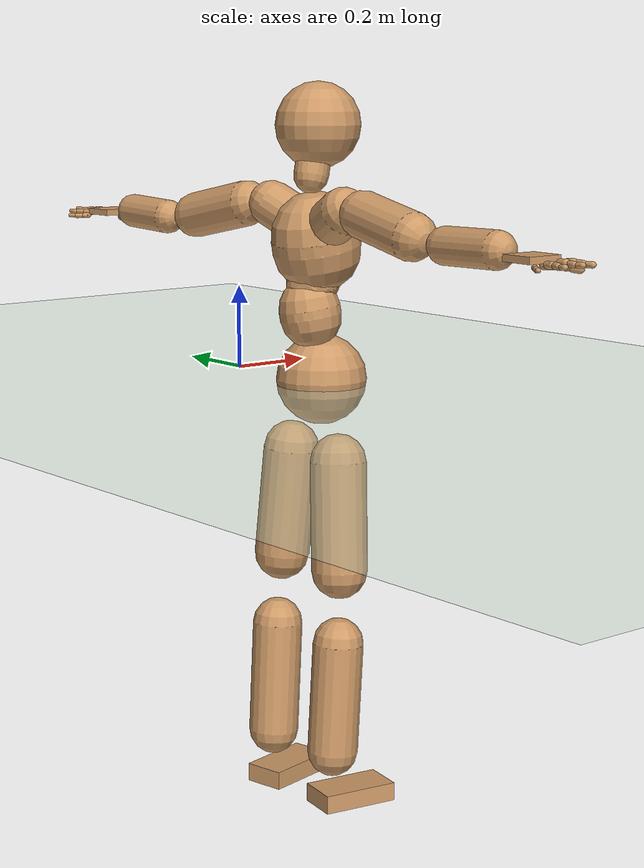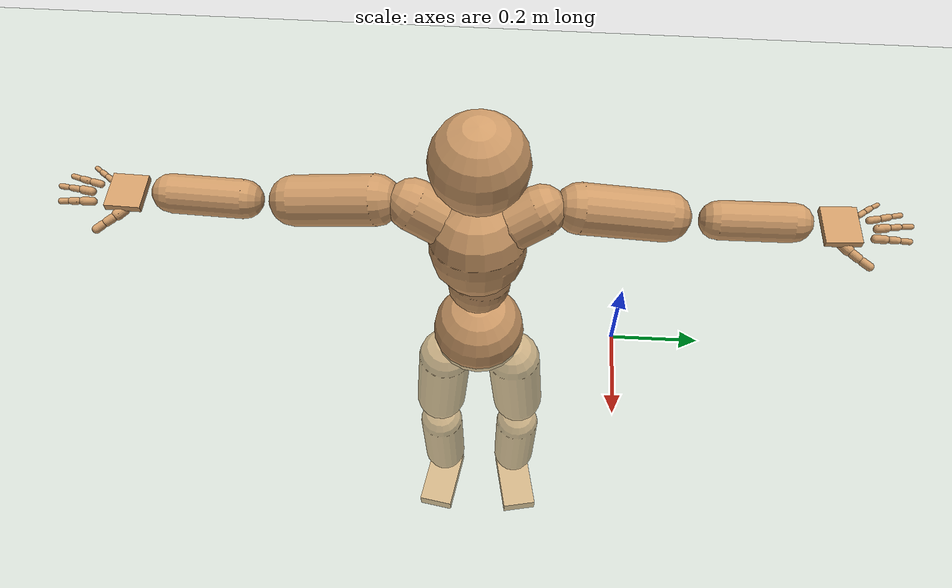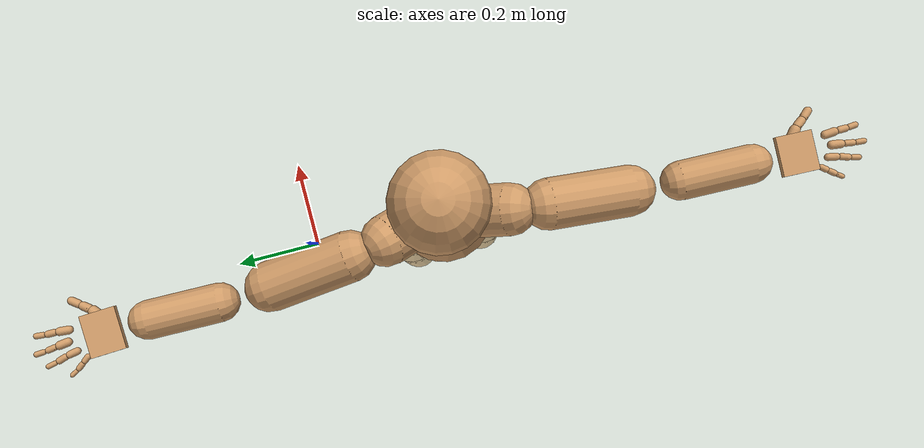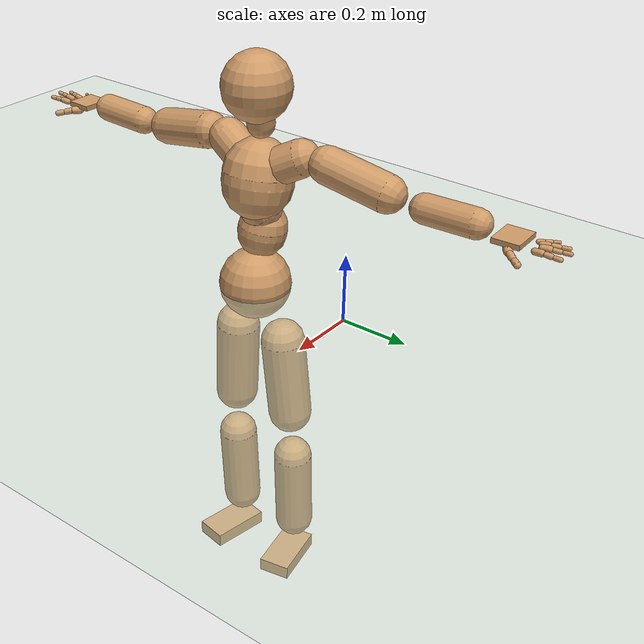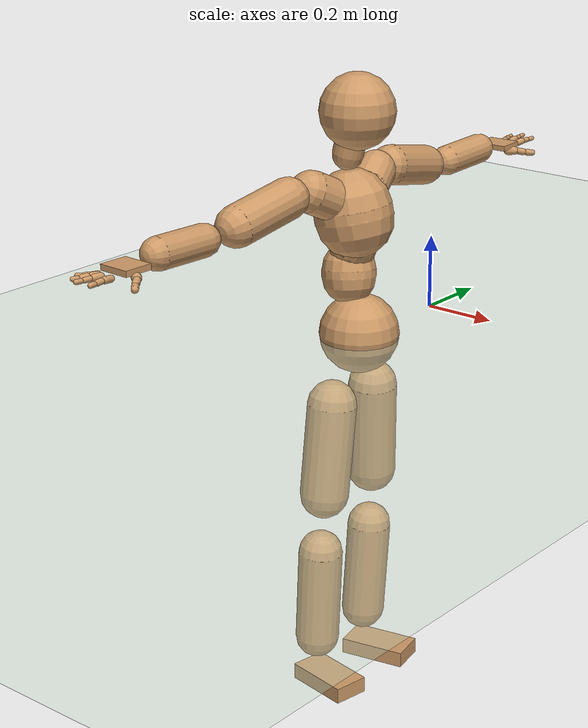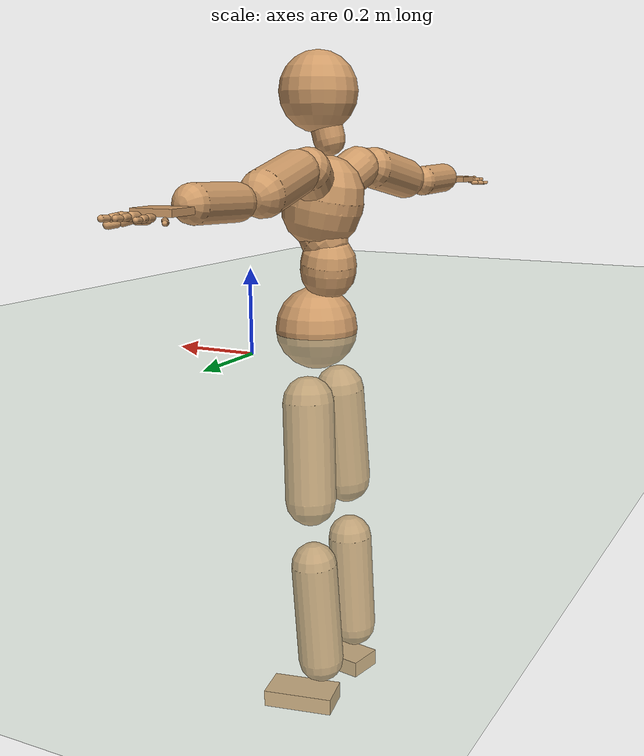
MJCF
<mujoco model="humanoid">
  <compiler coordinate="local" angle="radian"/>
  <default>
    <joint damping="0.0" armature="0.01" stiffness="0.0" limited="true"/>
    <geom conaffinity="1" condim="3" contype="7" margin="0.001" rgba="0.8 0.6 .4 1"/>
  </default>
  <asset>
    <texture type="skybox" builtin="gradient" rgb1=".4 .5 .6" rgb2="0 0 0" width="100" height="100"/>
    <texture builtin="flat" height="1278" mark="cross" markrgb="1 1 1" name="texgeom" random="0.01" rgb1="0.8 0.6 0.4" rgb2="0.8 0.6 0.4" type="cube" width="127"/>
    <texture builtin="checker" height="100" name="texplane" rgb1="0 0 0" rgb2="0.8 0.8 0.8" type="2d" width="100"/>
    <material name="MatPlane" reflectance="0.5" shininess="1" specular="1" texrepeat="60 60" texture="texplane"/>
    <material name="geom" texture="texgeom" texuniform="true"/>
  </asset>
  <worldbody>
    <light cutoff="100" diffuse="1 1 1" dir="-0 0 -1.3" directional="true" exponent="1" pos="0 0 1.3" specular=".1 .1 .1"/>
    <geom conaffinity="1" condim="3" name="floor" pos="0 0 0" rgba="0.8 0.9 0.8 1" size="100 100 .2" type="plane" material="MatPlane"/>
    <body name="Pelvis" pos="0.0008 -0.3163 0.0108">
      <freejoint name="Pelvis"/>
      <geom type="sphere" contype="1" conaffinity="1" density="500" size="0.1065" pos="0.0000 0.0000 0.0000" name="Pelvis"/>
      <body name="L_Hip" pos="-0.0162 0.081 -0.0903">
        <joint name="L_Hip_x" type="hinge" pos="0 0 0" axis="1 0 0" stiffness="800" damping="80" armature="0.02" range="-180.0000 180.0000"/>
        <joint name="L_Hip_y" type="hinge" pos="0 0 0" axis="0 1 0" stiffness="800" damping="80" armature="0.02" range="-180.0000 180.0000"/>
        <joint name="L_Hip_z" type="hinge" pos="0 0 0" axis="0 0 1" stiffness="800" damping="80" armature="0.02" range="-180.0000 180.0000"/>
        <geom type="capsule" contype="1" conaffinity="1" density="500" fromto="-0.0049 0.0058 -0.0862 -0.0197 0.0232 -0.3446" size="0.066" name="L_Hip"/>
        <body name="L_Knee" pos="-0.0247 0.029 -0.4308">
          <joint name="L_Knee_x" type="hinge" pos="0 0 0" axis="1 0 0" stiffness="800" damping="80" armature="0.02" range="-180.0000 180.0000"/>
          <joint name="L_Knee_y" type="hinge" pos="0 0 0" axis="0 1 0" stiffness="800" damping="80" armature="0.02" range="-180.0000 180.0000"/>
          <joint name="L_Knee_z" type="hinge" pos="0 0 0" axis="0 0 1" stiffness="800" damping="80" armature="0.02" range="-180.0000 180.0000"/>
          <geom type="capsule" contype="1" conaffinity="1" density="500" fromto="-0.0055 -0.0015 -0.0899 -0.0219 -0.0059 -0.3596" size="0.0598" name="L_Knee"/>
          <body name="L_Ankle" pos="-0.0274 -0.0074 -0.4495">
            <joint name="L_Ankle_x" type="hinge" pos="0 0 0" axis="1 0 0" stiffness="800" damping="80" armature="0.02" range="-180.0000 180.0000"/>
            <joint name="L_Ankle_y" type="hinge" pos="0 0 0" axis="0 1 0" stiffness="800" damping="80" armature="0.02" range="-180.0000 180.0000"/>
            <joint name="L_Ankle_z" type="hinge" pos="0 0 0" axis="0 0 1" stiffness="800" damping="80" armature="0.02" range="-180.0000 180.0000"/>
            <geom type="box" contype="1" conaffinity="1" density="500" pos="0.0580 0.0117 -0.0246" size="0.0923 0.0491 0.0218" quat="0.9950 0.0000 0.0000 0.0997" name="L_Ankle"/>
            <body name="L_Toe" pos="0.116 0.0235 -0.0492">
              <joint name="L_Toe_x" type="hinge" pos="0 0 0" axis="1 0 0" stiffness="500" damping="50" armature="0.02" range="-180.0000 180.0000"/>
              <joint name="L_Toe_y" type="hinge" pos="0 0 0" axis="0 1 0" stiffness="500" damping="50" armature="0.02" range="-180.0000 180.0000"/>
              <joint name="L_Toe_z" type="hinge" pos="0 0 0" axis="0 0 1" stiffness="500" damping="50" armature="0.02" range="-180.0000 180.0000"/>
              <geom type="box" contype="1" conaffinity="1" density="500" pos="0.0000 0.0000 0.0236" size="0.001 0.0024 0.001" quat="0.9944 0.0000 0.0000 0.1061" name="L_Toe"/>
            </body>
          </body>
        </body>
      </body>
      <body name="R_Hip" pos="-0.0175 -0.0807 -0.0966">
        <joint name="R_Hip_x" type="hinge" pos="0 0 0" axis="1 0 0" stiffness="800" damping="80" armature="0.02" range="-180.0000 180.0000"/>
        <joint name="R_Hip_y" type="hinge" pos="0 0 0" axis="0 1 0" stiffness="800" damping="80" armature="0.02" range="-180.0000 180.0000"/>
        <joint name="R_Hip_z" type="hinge" pos="0 0 0" axis="0 0 1" stiffness="800" damping="80" armature="0.02" range="-180.0000 180.0000"/>
        <geom type="capsule" contype="1" conaffinity="1" density="500" fromto="-0.0036 -0.0066 -0.0854 -0.0143 -0.0265 -0.3416" size="0.0659" name="R_Hip"/>
        <body name="R_Knee" pos="-0.0179 -0.0331 -0.427">
          <joint name="R_Knee_x" type="hinge" pos="0 0 0" axis="1 0 0" stiffness="800" damping="80" armature="0.02" range="-180.0000 180.0000"/>
          <joint name="R_Knee_y" type="hinge" pos="0 0 0" axis="0 1 0" stiffness="800" damping="80" armature="0.02" range="-180.0000 180.0000"/>
          <joint name="R_Knee_z" type="hinge" pos="0 0 0" axis="0 0 1" stiffness="800" damping="80" armature="0.02" range="-180.0000 180.0000"/>
          <geom type="capsule" contype="1" conaffinity="1" density="500" fromto="-0.0048 0.0005 -0.0881 -0.0192 0.0019 -0.3523" size="0.0598" name="R_Knee"/>
          <body name="R_Ankle" pos="-0.024 0.0024 -0.4404">
            <joint name="R_Ankle_x" type="hinge" pos="0 0 0" axis="1 0 0" stiffness="800" damping="80" armature="0.02" range="-180.0000 180.0000"/>
            <joint name="R_Ankle_y" type="hinge" pos="0 0 0" axis="0 1 0" stiffness="800" damping="80" armature="0.02" range="-180.0000 180.0000"/>
            <joint name="R_Ankle_z" type="hinge" pos="0 0 0" axis="0 0 1" stiffness="800" damping="80" armature="0.02" range="-180.0000 180.0000"/>
            <geom type="box" contype="1" conaffinity="1" density="500" pos="0.0549 -0.0094 -0.0262" size="0.0923 0.0491 0.0219" quat="0.9964 0.0000 0.0000 -0.0850" name="R_Ankle"/>
            <body name="R_Toe" pos="0.1097 -0.0189 -0.0525">
              <joint name="R_Toe_x" type="hinge" pos="0 0 0" axis="1 0 0" stiffness="500" damping="50" armature="0.02" range="-180.0000 180.0000"/>
              <joint name="R_Toe_y" type="hinge" pos="0 0 0" axis="0 1 0" stiffness="500" damping="50" armature="0.02" range="-180.0000 180.0000"/>
              <joint name="R_Toe_z" type="hinge" pos="0 0 0" axis="0 0 1" stiffness="500" damping="50" armature="0.02" range="-180.0000 180.0000"/>
              <geom type="box" contype="1" conaffinity="1" density="500" pos="0.0000 0.0000 0.0252" size="0.001 0.0024 0.001" quat="0.9972 0.0000 0.0000 -0.0748" name="R_Toe"/>
            </body>
          </body>
        </body>
      </body>
      <body name="Torso" pos="-0.0286 -0.0062 0.1068">
        <joint name="Torso_x" type="hinge" pos="0 0 0" axis="1 0 0" stiffness="1000" damping="100" armature="0.02" range="-180.0000 180.0000"/>
        <joint name="Torso_y" type="hinge" pos="0 0 0" axis="0 1 0" stiffness="1000" damping="100" armature="0.02" range="-180.0000 180.0000"/>
        <joint name="Torso_z" type="hinge" pos="0 0 0" axis="0 0 1" stiffness="1000" damping="100" armature="0.02" range="-180.0000 180.0000"/>
        <geom type="capsule" contype="1" conaffinity="1" density="500" fromto="-0.0073 0.0072 0.0618 -0.0048 0.0048 0.0412" size="0.0718" name="Torso"/>
        <body name="Spine" pos="-0.0121 0.012 0.1029">
          <joint name="Spine_x" type="hinge" pos="0 0 0" axis="1 0 0" stiffness="1000" damping="100" armature="0.02" range="-180.0000 180.0000"/>
          <joint name="Spine_y" type="hinge" pos="0 0 0" axis="0 1 0" stiffness="1000" damping="100" armature="0.02" range="-180.0000 180.0000"/>
          <joint name="Spine_z" type="hinge" pos="0 0 0" axis="0 0 1" stiffness="1000" damping="100" armature="0.02" range="-180.0000 180.0000"/>
          <geom type="capsule" contype="1" conaffinity="1" density="500" fromto="0.0216 -0.0040 0.0253 0.0144 -0.0027 0.0169" size="0.0608" name="Spine"/>
          <body name="Chest" pos="0.036 -0.0067 0.0421">
            <joint name="Chest_x" type="hinge" pos="0 0 0" axis="1 0 0" stiffness="1000" damping="100" armature="0.02" range="-180.0000 180.0000"/>
            <joint name="Chest_y" type="hinge" pos="0 0 0" axis="0 1 0" stiffness="1000" damping="100" armature="0.02" range="-180.0000 180.0000"/>
            <joint name="Chest_z" type="hinge" pos="0 0 0" axis="0 0 1" stiffness="1000" damping="100" armature="0.02" range="-180.0000 180.0000"/>
            <geom type="capsule" contype="1" conaffinity="1" density="500" fromto="-0.0169 -0.0017 0.0834 -0.0112 -0.0011 0.0556" size="0.1037" name="Chest"/>
            <body name="Neck" pos="-0.038 -0.0059 0.1935">
              <joint name="Neck_x" type="hinge" pos="0 0 0" axis="1 0 0" stiffness="500" damping="50" armature="0.02" range="-180.0000 180.0000"/>
              <joint name="Neck_y" type="hinge" pos="0 0 0" axis="0 1 0" stiffness="500" damping="50" armature="0.02" range="-180.0000 180.0000"/>
              <joint name="Neck_z" type="hinge" pos="0 0 0" axis="0 0 1" stiffness="500" damping="50" armature="0.02" range="-180.0000 180.0000"/>
              <geom type="capsule" contype="1" conaffinity="1" density="500" fromto="0.0064 0.0018 0.0284 0.0257 0.0070 0.1136" size="0.0404" name="Neck"/>
              <body name="Head" pos="0.0321 0.0088 0.1421">
                <joint name="Head_x" type="hinge" pos="0 0 0" axis="1 0 0" stiffness="500" damping="50" armature="0.02" range="-180.0000 180.0000"/>
                <joint name="Head_y" type="hinge" pos="0 0 0" axis="0 1 0" stiffness="500" damping="50" armature="0.02" range="-180.0000 180.0000"/>
                <joint name="Head_z" type="hinge" pos="0 0 0" axis="0 0 1" stiffness="500" damping="50" armature="0.02" range="-180.0000 180.0000"/>
                <geom type="sphere" contype="1" conaffinity="1" density="500" size="0.0989" pos="0.0000 0.0000 0.0000" name="Head"/>
              </body>
            </body>
            <body name="L_Thorax" pos="-0.0192 0.0533 0.1137">
              <joint name="L_Thorax_x" type="hinge" pos="0 0 0" axis="1 0 0" stiffness="500" damping="50" armature="0.02" range="-180.0000 180.0000"/>
              <joint name="L_Thorax_y" type="hinge" pos="0 0 0" axis="0 1 0" stiffness="500" damping="50" armature="0.02" range="-180.0000 180.0000"/>
              <joint name="L_Thorax_z" type="hinge" pos="0 0 0" axis="0 0 1" stiffness="500" damping="50" armature="0.02" range="-180.0000 180.0000"/>
              <geom type="capsule" contype="1" conaffinity="1" density="500" fromto="-0.0060 0.0182 0.0096 -0.0241 0.0729 0.0383" size="0.0542" name="L_Thorax"/>
              <body name="L_Shoulder" pos="-0.0301 0.0911 0.0479">
                <joint name="L_Shoulder_x" type="hinge" pos="0 0 0" axis="1 0 0" stiffness="500" damping="50" armature="0.02" range="-180.0000 180.0000"/>
                <joint name="L_Shoulder_y" type="hinge" pos="0 0 0" axis="0 1 0" stiffness="500" damping="50" armature="0.02" range="-180.0000 180.0000"/>
                <joint name="L_Shoulder_z" type="hinge" pos="0 0 0" axis="0 0 1" stiffness="500" damping="50" armature="0.02" range="-180.0000 180.0000"/>
                <geom type="capsule" contype="1" conaffinity="1" density="500" fromto="-0.0063 0.0604 -0.0128 -0.0251 0.2415 -0.0510" size="0.0538" name="L_Shoulder"/>
                <body name="L_Elbow" pos="-0.0313 0.3019 -0.0638">
                  <joint name="L_Elbow_x" type="hinge" pos="0 0 0" axis="1 0 0" stiffness="500" damping="50" armature="0.02" range="-720.0000 720.0000"/>
                  <joint name="L_Elbow_y" type="hinge" pos="0 0 0" axis="0 1 0" stiffness="500" damping="50" armature="0.02" range="-720.0000 720.0000"/>
                  <joint name="L_Elbow_z" type="hinge" pos="0 0 0" axis="0 0 1" stiffness="500" damping="50" armature="0.02" range="-720.0000 720.0000"/>
                  <geom type="capsule" contype="1" conaffinity="1" density="500" fromto="0.0007 0.0512 0.0018 0.0027 0.2050 0.0072" size="0.0414" name="L_Elbow"/>
                  <body name="L_Wrist" pos="0.0034 0.2562 0.009">
                    <joint name="L_Wrist_x" type="hinge" pos="0 0 0" axis="1 0 0" stiffness="300" damping="30" armature="0.02" range="-180.0000 180.0000"/>
                    <joint name="L_Wrist_y" type="hinge" pos="0 0 0" axis="0 1 0" stiffness="300" damping="30" armature="0.02" range="-180.0000 180.0000"/>
                    <joint name="L_Wrist_z" type="hinge" pos="0 0 0" axis="0 0 1" stiffness="300" damping="30" armature="0.02" range="-180.0000 180.0000"/>
                    <geom type="box" contype="1" conaffinity="1" density="500" pos="-0.0023 0.0486 -0.0090" size="0.0386 0.0459 0.0074" quat="0.7237 0.0000 0.0000 -0.6901" name="L_Wrist"/>
                    <body name="L_Index1" pos="0.02 0.1131 -0.0156">
                      <joint name="L_Index1_x" type="hinge" pos="0 0 0" axis="1 0 0" stiffness="100" damping="10" armature="0.02" range="-180.0000 180.0000"/>
                      <joint name="L_Index1_y" type="hinge" pos="0 0 0" axis="0 1 0" stiffness="100" damping="10" armature="0.02" range="-180.0000 180.0000"/>
                      <joint name="L_Index1_z" type="hinge" pos="0 0 0" axis="0 0 1" stiffness="100" damping="10" armature="0.02" range="-180.0000 180.0000"/>
                      <geom type="capsule" contype="1" conaffinity="1" density="500" fromto="0.0005 0.0065 0.0006 0.0021 0.0261 0.0024" size="0.009" name="L_Index1"/>
                      <body name="L_Index2" pos="0.0026 0.0327 0.003">
                        <joint name="L_Index2_x" type="hinge" pos="0 0 0" axis="1 0 0" stiffness="100" damping="10" armature="0.02" range="-180.0000 180.0000"/>
                        <joint name="L_Index2_y" type="hinge" pos="0 0 0" axis="0 1 0" stiffness="100" damping="10" armature="0.02" range="-180.0000 180.0000"/>
                        <joint name="L_Index2_z" type="hinge" pos="0 0 0" axis="0 0 1" stiffness="100" damping="10" armature="0.02" range="-180.0000 180.0000"/>
                        <geom type="capsule" contype="1" conaffinity="1" density="500" fromto="0.0001 0.0046 -0.0003 0.0003 0.0185 -0.0011" size="0.0076" name="L_Index2"/>
                        <body name="L_Index3" pos="0.0004 0.0231 -0.0014">
                          <joint name="L_Index3_x" type="hinge" pos="0 0 0" axis="1 0 0" stiffness="100" damping="10" armature="0.02" range="-180.0000 180.0000"/>
                          <joint name="L_Index3_y" type="hinge" pos="0 0 0" axis="0 1 0" stiffness="100" damping="10" armature="0.02" range="-180.0000 180.0000"/>
                          <joint name="L_Index3_z" type="hinge" pos="0 0 0" axis="0 0 1" stiffness="100" damping="10" armature="0.02" range="-180.0000 180.0000"/>
                          <geom type="capsule" contype="1" conaffinity="1" density="500" fromto="0.0005 0.0050 0.0001 0.0019 0.0201 0.0005" size="0.0064" name="L_Index3"/>
                        </body>
                      </body>
                    </body>
                    <body name="L_Middle1" pos="-0.003 0.1207 -0.0132">
                      <joint name="L_Middle1_x" type="hinge" pos="0 0 0" axis="1 0 0" stiffness="100" damping="10" armature="0.02" range="-180.0000 180.0000"/>
                      <joint name="L_Middle1_y" type="hinge" pos="0 0 0" axis="0 1 0" stiffness="100" damping="10" armature="0.02" range="-180.0000 180.0000"/>
                      <joint name="L_Middle1_z" type="hinge" pos="0 0 0" axis="0 0 1" stiffness="100" damping="10" armature="0.02" range="-180.0000 180.0000"/>
                      <geom type="capsule" contype="1" conaffinity="1" density="500" fromto="-0.0008 0.0062 0.0003 -0.0033 0.0249 0.0012" size="0.0092" name="L_Middle1"/>
                      <body name="L_Middle2" pos="-0.0041 0.0311 0.0015">
                        <joint name="L_Middle2_x" type="hinge" pos="0 0 0" axis="1 0 0" stiffness="100" damping="10" armature="0.02" range="-180.0000 180.0000"/>
                        <joint name="L_Middle2_y" type="hinge" pos="0 0 0" axis="0 1 0" stiffness="100" damping="10" armature="0.02" range="-180.0000 180.0000"/>
                        <joint name="L_Middle2_z" type="hinge" pos="0 0 0" axis="0 0 1" stiffness="100" damping="10" armature="0.02" range="-180.0000 180.0000"/>
                        <geom type="capsule" contype="1" conaffinity="1" density="500" fromto="-0.0008 0.0048 -0.0001 -0.0031 0.0193 -0.0005" size="0.0068" name="L_Middle2"/>
                        <body name="L_Middle3" pos="-0.0039 0.0242 -0.0006">
                          <joint name="L_Middle3_x" type="hinge" pos="0 0 0" axis="1 0 0" stiffness="100" damping="10" armature="0.02" range="-180.0000 180.0000"/>
                          <joint name="L_Middle3_y" type="hinge" pos="0 0 0" axis="0 1 0" stiffness="100" damping="10" armature="0.02" range="-180.0000 180.0000"/>
                          <joint name="L_Middle3_z" type="hinge" pos="0 0 0" axis="0 0 1" stiffness="100" damping="10" armature="0.02" range="-180.0000 180.0000"/>
                          <geom type="capsule" contype="1" conaffinity="1" density="500" fromto="-0.0004 0.0052 0.0003 -0.0015 0.0209 0.0011" size="0.006" name="L_Middle3"/>
                        </body>
                      </body>
                    </body>
                    <body name="L_Pinky1" pos="-0.0413 0.0944 -0.0214">
                      <joint name="L_Pinky1_x" type="hinge" pos="0 0 0" axis="1 0 0" stiffness="100" damping="10" armature="0.02" range="-180.0000 180.0000"/>
                      <joint name="L_Pinky1_y" type="hinge" pos="0 0 0" axis="0 1 0" stiffness="100" damping="10" armature="0.02" range="-180.0000 180.0000"/>
                      <joint name="L_Pinky1_z" type="hinge" pos="0 0 0" axis="0 0 1" stiffness="100" damping="10" armature="0.02" range="-180.0000 180.0000"/>
                      <geom type="capsule" contype="1" conaffinity="1" density="500" fromto="-0.0025 0.0030 -0.0001 -0.0098 0.0121 -0.0004" size="0.0065" name="L_Pinky1"/>
                      <body name="L_Pinky2" pos="-0.0123 0.0152 -0.0005">
                        <joint name="L_Pinky2_x" type="hinge" pos="0 0 0" axis="1 0 0" stiffness="100" damping="10" armature="0.02" range="-180.0000 180.0000"/>
                        <joint name="L_Pinky2_y" type="hinge" pos="0 0 0" axis="0 1 0" stiffness="100" damping="10" armature="0.02" range="-180.0000 180.0000"/>
                        <joint name="L_Pinky2_z" type="hinge" pos="0 0 0" axis="0 0 1" stiffness="100" damping="10" armature="0.02" range="-180.0000 180.0000"/>
                        <geom type="capsule" contype="1" conaffinity="1" density="500" fromto="-0.0024 0.0031 -0.0002 -0.0095 0.0123 -0.0007" size="0.0063" name="L_Pinky2"/>
                        <body name="L_Pinky3" pos="-0.0119 0.0153 -0.0009">
                          <joint name="L_Pinky3_x" type="hinge" pos="0 0 0" axis="1 0 0" stiffness="100" damping="10" armature="0.02" range="-180.0000 180.0000"/>
                          <joint name="L_Pinky3_y" type="hinge" pos="0 0 0" axis="0 1 0" stiffness="100" damping="10" armature="0.02" range="-180.0000 180.0000"/>
                          <joint name="L_Pinky3_z" type="hinge" pos="0 0 0" axis="0 0 1" stiffness="100" damping="10" armature="0.02" range="-180.0000 180.0000"/>
                          <geom type="capsule" contype="1" conaffinity="1" density="500" fromto="-0.0020 0.0035 0.0002 -0.0079 0.0139 0.0009" size="0.0049" name="L_Pinky3"/>
                        </body>
                      </body>
                    </body>
                    <body name="L_Ring1" pos="-0.0258 0.1083 -0.0162">
                      <joint name="L_Ring1_x" type="hinge" pos="0 0 0" axis="1 0 0" stiffness="100" damping="10" armature="0.02" range="-180.0000 180.0000"/>
                      <joint name="L_Ring1_y" type="hinge" pos="0 0 0" axis="0 1 0" stiffness="100" damping="10" armature="0.02" range="-180.0000 180.0000"/>
                      <joint name="L_Ring1_z" type="hinge" pos="0 0 0" axis="0 0 1" stiffness="100" damping="10" armature="0.02" range="-180.0000 180.0000"/>
                      <geom type="capsule" contype="1" conaffinity="1" density="500" fromto="-0.0011 0.0057 0.0003 -0.0045 0.0226 0.0013" size="0.0079" name="L_Ring1"/>
                      <body name="L_Ring2" pos="-0.0056 0.0283 0.0017">
                        <joint name="L_Ring2_x" type="hinge" pos="0 0 0" axis="1 0 0" stiffness="100" damping="10" armature="0.02" range="-180.0000 180.0000"/>
                        <joint name="L_Ring2_y" type="hinge" pos="0 0 0" axis="0 1 0" stiffness="100" damping="10" armature="0.02" range="-180.0000 180.0000"/>
                        <joint name="L_Ring2_z" type="hinge" pos="0 0 0" axis="0 0 1" stiffness="100" damping="10" armature="0.02" range="-180.0000 180.0000"/>
                        <geom type="capsule" contype="1" conaffinity="1" density="500" fromto="-0.0015 0.0046 -0.0002 -0.0059 0.0185 -0.0008" size="0.0073" name="L_Ring2"/>
                        <body name="L_Ring3" pos="-0.0074 0.0231 -0.001">
                          <joint name="L_Ring3_x" type="hinge" pos="0 0 0" axis="1 0 0" stiffness="100" damping="10" armature="0.02" range="-180.0000 180.0000"/>
                          <joint name="L_Ring3_y" type="hinge" pos="0 0 0" axis="0 1 0" stiffness="100" damping="10" armature="0.02" range="-180.0000 180.0000"/>
                          <joint name="L_Ring3_z" type="hinge" pos="0 0 0" axis="0 0 1" stiffness="100" damping="10" armature="0.02" range="-180.0000 180.0000"/>
                          <geom type="capsule" contype="1" conaffinity="1" density="500" fromto="-0.0011 0.0050 0.0002 -0.0043 0.0201 0.0008" size="0.0057" name="L_Ring3"/>
                        </body>
                      </body>
                    </body>
                    <body name="L_Thumb1" pos="0.0269 0.0491 -0.0237">
                      <joint name="L_Thumb1_x" type="hinge" pos="0 0 0" axis="1 0 0" stiffness="100" damping="10" armature="0.02" range="-180.0000 180.0000"/>
                      <joint name="L_Thumb1_y" type="hinge" pos="0 0 0" axis="0 1 0" stiffness="100" damping="10" armature="0.02" range="-180.0000 180.0000"/>
                      <joint name="L_Thumb1_z" type="hinge" pos="0 0 0" axis="0 0 1" stiffness="100" damping="10" armature="0.02" range="-180.0000 180.0000"/>
                      <geom type="capsule" contype="1" conaffinity="1" density="500" fromto="0.0048 0.0036 0.0001 0.0192 0.0145 0.0004" size="0.012" name="L_Thumb1"/>
                      <body name="L_Thumb2" pos="0.0239 0.0181 0.0005">
                        <joint name="L_Thumb2_x" type="hinge" pos="0 0 0" axis="1 0 0" stiffness="100" damping="10" armature="0.02" range="-180.0000 180.0000"/>
                        <joint name="L_Thumb2_y" type="hinge" pos="0 0 0" axis="0 1 0" stiffness="100" damping="10" armature="0.02" range="-180.0000 180.0000"/>
                        <joint name="L_Thumb2_z" type="hinge" pos="0 0 0" axis="0 0 1" stiffness="100" damping="10" armature="0.02" range="-180.0000 180.0000"/>
                        <geom type="capsule" contype="1" conaffinity="1" density="500" fromto="0.0030 0.0042 -0.0012 0.0119 0.0169 -0.0048" size="0.0095" name="L_Thumb2"/>
                        <body name="L_Thumb3" pos="0.0149 0.0211 -0.0061">
                          <joint name="L_Thumb3_x" type="hinge" pos="0 0 0" axis="1 0 0" stiffness="100" damping="10" armature="0.02" range="-180.0000 180.0000"/>
                          <joint name="L_Thumb3_y" type="hinge" pos="0 0 0" axis="0 1 0" stiffness="100" damping="10" armature="0.02" range="-180.0000 180.0000"/>
                          <joint name="L_Thumb3_z" type="hinge" pos="0 0 0" axis="0 0 1" stiffness="100" damping="10" armature="0.02" range="-180.0000 180.0000"/>
                          <geom type="capsule" contype="1" conaffinity="1" density="500" fromto="0.0034 0.0046 -0.0008 0.0135 0.0185 -0.0032" size="0.0089" name="L_Thumb3"/>
                        </body>
                      </body>
                    </body>
                  </body>
                </body>
              </body>
            </body>
            <body name="R_Thorax" pos="-0.027 -0.0557 0.1095">
              <joint name="R_Thorax_x" type="hinge" pos="0 0 0" axis="1 0 0" stiffness="500" damping="50" armature="0.02" range="-180.0000 180.0000"/>
              <joint name="R_Thorax_y" type="hinge" pos="0 0 0" axis="0 1 0" stiffness="500" damping="50" armature="0.02" range="-180.0000 180.0000"/>
              <joint name="R_Thorax_z" type="hinge" pos="0 0 0" axis="0 0 1" stiffness="500" damping="50" armature="0.02" range="-180.0000 180.0000"/>
              <geom type="capsule" contype="1" conaffinity="1" density="500" fromto="-0.0044 -0.0198 0.0098 -0.0176 -0.0791 0.0393" size="0.0555" name="R_Thorax"/>
              <body name="R_Shoulder" pos="-0.022 -0.0988 0.0491">
                <joint name="R_Shoulder_x" type="hinge" pos="0 0 0" axis="1 0 0" stiffness="500" damping="50" armature="0.02" range="-180.0000 180.0000"/>
                <joint name="R_Shoulder_y" type="hinge" pos="0 0 0" axis="0 1 0" stiffness="500" damping="50" armature="0.02" range="-180.0000 180.0000"/>
                <joint name="R_Shoulder_z" type="hinge" pos="0 0 0" axis="0 0 1" stiffness="500" damping="50" armature="0.02" range="-180.0000 180.0000"/>
                <geom type="capsule" contype="1" conaffinity="1" density="500" fromto="-0.0048 -0.0585 -0.0115 -0.0191 -0.2338 -0.0459" size="0.0542" name="R_Shoulder"/>
                <body name="R_Elbow" pos="-0.0238 -0.2923 -0.0573">
                  <joint name="R_Elbow_x" type="hinge" pos="0 0 0" axis="1 0 0" stiffness="500" damping="50" armature="0.02" range="-720.0000 720.0000"/>
                  <joint name="R_Elbow_y" type="hinge" pos="0 0 0" axis="0 1 0" stiffness="500" damping="50" armature="0.02" range="-720.0000 720.0000"/>
                  <joint name="R_Elbow_z" type="hinge" pos="0 0 0" axis="0 0 1" stiffness="500" damping="50" armature="0.02" range="-720.0000 720.0000"/>
                  <geom type="capsule" contype="1" conaffinity="1" density="500" fromto="-0.0012 -0.0514 0.0010 -0.0048 -0.2055 0.0039" size="0.0416" name="R_Elbow"/>
                  <body name="R_Wrist" pos="-0.006 -0.2569 0.0048">
                    <joint name="R_Wrist_x" type="hinge" pos="0 0 0" axis="1 0 0" stiffness="300" damping="30" armature="0.02" range="-180.0000 180.0000"/>
                    <joint name="R_Wrist_y" type="hinge" pos="0 0 0" axis="0 1 0" stiffness="300" damping="30" armature="0.02" range="-180.0000 180.0000"/>
                    <joint name="R_Wrist_z" type="hinge" pos="0 0 0" axis="0 0 1" stiffness="300" damping="30" armature="0.02" range="-180.0000 180.0000"/>
                    <geom type="box" contype="1" conaffinity="1" density="500" pos="-0.0015 -0.0478 -0.0086" size="0.0386 0.0427 0.0076" quat="0.7181 0.0000 0.0000 0.6959" name="R_Wrist"/>
                    <body name="R_Index1" pos="0.0216 -0.1116 -0.0148">
                      <joint name="R_Index1_x" type="hinge" pos="0 0 0" axis="1 0 0" stiffness="100" damping="10" armature="0.02" range="-180.0000 180.0000"/>
                      <joint name="R_Index1_y" type="hinge" pos="0 0 0" axis="0 1 0" stiffness="100" damping="10" armature="0.02" range="-180.0000 180.0000"/>
                      <joint name="R_Index1_z" type="hinge" pos="0 0 0" axis="0 0 1" stiffness="100" damping="10" armature="0.02" range="-180.0000 180.0000"/>
                      <geom type="capsule" contype="1" conaffinity="1" density="500" fromto="0.0005 -0.0065 0.0006 0.0021 -0.0261 0.0024" size="0.009" name="R_Index1"/>
                      <body name="R_Index2" pos="0.0026 -0.0327 0.003">
                        <joint name="R_Index2_x" type="hinge" pos="0 0 0" axis="1 0 0" stiffness="100" damping="10" armature="0.02" range="-180.0000 180.0000"/>
                        <joint name="R_Index2_y" type="hinge" pos="0 0 0" axis="0 1 0" stiffness="100" damping="10" armature="0.02" range="-180.0000 180.0000"/>
                        <joint name="R_Index2_z" type="hinge" pos="0 0 0" axis="0 0 1" stiffness="100" damping="10" armature="0.02" range="-180.0000 180.0000"/>
                        <geom type="capsule" contype="1" conaffinity="1" density="500" fromto="0.0001 -0.0046 -0.0003 0.0003 -0.0185 -0.0011" size="0.0076" name="R_Index2"/>
                        <body name="R_Index3" pos="0.0004 -0.0231 -0.0014">
                          <joint name="R_Index3_x" type="hinge" pos="0 0 0" axis="1 0 0" stiffness="100" damping="10" armature="0.02" range="-180.0000 180.0000"/>
                          <joint name="R_Index3_y" type="hinge" pos="0 0 0" axis="0 1 0" stiffness="100" damping="10" armature="0.02" range="-180.0000 180.0000"/>
                          <joint name="R_Index3_z" type="hinge" pos="0 0 0" axis="0 0 1" stiffness="100" damping="10" armature="0.02" range="-180.0000 180.0000"/>
                          <geom type="capsule" contype="1" conaffinity="1" density="500" fromto="0.0005 -0.0042 0.0001 0.0019 -0.0169 0.0005" size="0.0067" name="R_Index3"/>
                        </body>
                      </body>
                    </body>
                    <body name="R_Middle1" pos="-0.0014 -0.1192 -0.0124">
                      <joint name="R_Middle1_x" type="hinge" pos="0 0 0" axis="1 0 0" stiffness="100" damping="10" armature="0.02" range="-180.0000 180.0000"/>
                      <joint name="R_Middle1_y" type="hinge" pos="0 0 0" axis="0 1 0" stiffness="100" damping="10" armature="0.02" range="-180.0000 180.0000"/>
                      <joint name="R_Middle1_z" type="hinge" pos="0 0 0" axis="0 0 1" stiffness="100" damping="10" armature="0.02" range="-180.0000 180.0000"/>
                      <geom type="capsule" contype="1" conaffinity="1" density="500" fromto="-0.0008 -0.0062 0.0003 -0.0033 -0.0249 0.0012" size="0.0092" name="R_Middle1"/>
                      <body name="R_Middle2" pos="-0.0041 -0.0311 0.0015">
                        <joint name="R_Middle2_x" type="hinge" pos="0 0 0" axis="1 0 0" stiffness="100" damping="10" armature="0.02" range="-180.0000 180.0000"/>
                        <joint name="R_Middle2_y" type="hinge" pos="0 0 0" axis="0 1 0" stiffness="100" damping="10" armature="0.02" range="-180.0000 180.0000"/>
                        <joint name="R_Middle2_z" type="hinge" pos="0 0 0" axis="0 0 1" stiffness="100" damping="10" armature="0.02" range="-180.0000 180.0000"/>
                        <geom type="capsule" contype="1" conaffinity="1" density="500" fromto="-0.0008 -0.0048 -0.0001 -0.0031 -0.0193 -0.0005" size="0.0069" name="R_Middle2"/>
                        <body name="R_Middle3" pos="-0.0039 -0.0242 -0.0006">
                          <joint name="R_Middle3_x" type="hinge" pos="0 0 0" axis="1 0 0" stiffness="100" damping="10" armature="0.02" range="-180.0000 180.0000"/>
                          <joint name="R_Middle3_y" type="hinge" pos="0 0 0" axis="0 1 0" stiffness="100" damping="10" armature="0.02" range="-180.0000 180.0000"/>
                          <joint name="R_Middle3_z" type="hinge" pos="0 0 0" axis="0 0 1" stiffness="100" damping="10" armature="0.02" range="-180.0000 180.0000"/>
                          <geom type="capsule" contype="1" conaffinity="1" density="500" fromto="-0.0004 -0.0044 0.0003 -0.0015 -0.0177 0.0011" size="0.0062" name="R_Middle3"/>
                        </body>
                      </body>
                    </body>
                    <body name="R_Pinky1" pos="-0.0397 -0.0928 -0.0206">
                      <joint name="R_Pinky1_x" type="hinge" pos="0 0 0" axis="1 0 0" stiffness="100" damping="10" armature="0.02" range="-180.0000 180.0000"/>
                      <joint name="R_Pinky1_y" type="hinge" pos="0 0 0" axis="0 1 0" stiffness="100" damping="10" armature="0.02" range="-180.0000 180.0000"/>
                      <joint name="R_Pinky1_z" type="hinge" pos="0 0 0" axis="0 0 1" stiffness="100" damping="10" armature="0.02" range="-180.0000 180.0000"/>
                      <geom type="capsule" contype="1" conaffinity="1" density="500" fromto="-0.0025 -0.0030 -0.0001 -0.0098 -0.0121 -0.0004" size="0.0065" name="R_Pinky1"/>
                      <body name="R_Pinky2" pos="-0.0123 -0.0152 -0.0005">
                        <joint name="R_Pinky2_x" type="hinge" pos="0 0 0" axis="1 0 0" stiffness="100" damping="10" armature="0.02" range="-180.0000 180.0000"/>
                        <joint name="R_Pinky2_y" type="hinge" pos="0 0 0" axis="0 1 0" stiffness="100" damping="10" armature="0.02" range="-180.0000 180.0000"/>
                        <joint name="R_Pinky2_z" type="hinge" pos="0 0 0" axis="0 0 1" stiffness="100" damping="10" armature="0.02" range="-180.0000 180.0000"/>
                        <geom type="capsule" contype="1" conaffinity="1" density="500" fromto="-0.0024 -0.0031 -0.0002 -0.0095 -0.0123 -0.0007" size="0.0063" name="R_Pinky2"/>
                        <body name="R_Pinky3" pos="-0.0119 -0.0153 -0.0009">
                          <joint name="R_Pinky3_x" type="hinge" pos="0 0 0" axis="1 0 0" stiffness="100" damping="10" armature="0.02" range="-180.0000 180.0000"/>
                          <joint name="R_Pinky3_y" type="hinge" pos="0 0 0" axis="0 1 0" stiffness="100" damping="10" armature="0.02" range="-180.0000 180.0000"/>
                          <joint name="R_Pinky3_z" type="hinge" pos="0 0 0" axis="0 0 1" stiffness="100" damping="10" armature="0.02" range="-180.0000 180.0000"/>
                          <geom type="capsule" contype="1" conaffinity="1" density="500" fromto="-0.0020 -0.0027 0.0002 -0.0079 -0.0107 0.0009" size="0.0052" name="R_Pinky3"/>
                        </body>
                      </body>
                    </body>
                    <body name="R_Ring1" pos="-0.0241 -0.1067 -0.0155">
                      <joint name="R_Ring1_x" type="hinge" pos="0 0 0" axis="1 0 0" stiffness="100" damping="10" armature="0.02" range="-180.0000 180.0000"/>
                      <joint name="R_Ring1_y" type="hinge" pos="0 0 0" axis="0 1 0" stiffness="100" damping="10" armature="0.02" range="-180.0000 180.0000"/>
                      <joint name="R_Ring1_z" type="hinge" pos="0 0 0" axis="0 0 1" stiffness="100" damping="10" armature="0.02" range="-180.0000 180.0000"/>
                      <geom type="capsule" contype="1" conaffinity="1" density="500" fromto="-0.0011 -0.0057 0.0003 -0.0045 -0.0226 0.0013" size="0.0079" name="R_Ring1"/>
                      <body name="R_Ring2" pos="-0.0056 -0.0283 0.0017">
                        <joint name="R_Ring2_x" type="hinge" pos="0 0 0" axis="1 0 0" stiffness="100" damping="10" armature="0.02" range="-180.0000 180.0000"/>
                        <joint name="R_Ring2_y" type="hinge" pos="0 0 0" axis="0 1 0" stiffness="100" damping="10" armature="0.02" range="-180.0000 180.0000"/>
                        <joint name="R_Ring2_z" type="hinge" pos="0 0 0" axis="0 0 1" stiffness="100" damping="10" armature="0.02" range="-180.0000 180.0000"/>
                        <geom type="capsule" contype="1" conaffinity="1" density="500" fromto="-0.0015 -0.0046 -0.0002 -0.0059 -0.0185 -0.0008" size="0.0073" name="R_Ring2"/>
                        <body name="R_Ring3" pos="-0.0074 -0.0231 -0.001">
                          <joint name="R_Ring3_x" type="hinge" pos="0 0 0" axis="1 0 0" stiffness="100" damping="10" armature="0.02" range="-180.0000 180.0000"/>
                          <joint name="R_Ring3_y" type="hinge" pos="0 0 0" axis="0 1 0" stiffness="100" damping="10" armature="0.02" range="-180.0000 180.0000"/>
                          <joint name="R_Ring3_z" type="hinge" pos="0 0 0" axis="0 0 1" stiffness="100" damping="10" armature="0.02" range="-180.0000 180.0000"/>
                          <geom type="capsule" contype="1" conaffinity="1" density="500" fromto="-0.0011 -0.0042 0.0002 -0.0043 -0.0169 0.0008" size="0.006" name="R_Ring3"/>
                        </body>
                      </body>
                    </body>
                    <body name="R_Thumb1" pos="0.0285 -0.0476 -0.0229">
                      <joint name="R_Thumb1_x" type="hinge" pos="0 0 0" axis="1 0 0" stiffness="100" damping="10" armature="0.02" range="-180.0000 180.0000"/>
                      <joint name="R_Thumb1_y" type="hinge" pos="0 0 0" axis="0 1 0" stiffness="100" damping="10" armature="0.02" range="-180.0000 180.0000"/>
                      <joint name="R_Thumb1_z" type="hinge" pos="0 0 0" axis="0 0 1" stiffness="100" damping="10" armature="0.02" range="-180.0000 180.0000"/>
                      <geom type="capsule" contype="1" conaffinity="1" density="500" fromto="0.0048 -0.0036 0.0001 0.0192 -0.0145 0.0004" size="0.012" name="R_Thumb1"/>
                      <body name="R_Thumb2" pos="0.0239 -0.0181 0.0005">
                        <joint name="R_Thumb2_x" type="hinge" pos="0 0 0" axis="1 0 0" stiffness="100" damping="10" armature="0.02" range="-180.0000 180.0000"/>
                        <joint name="R_Thumb2_y" type="hinge" pos="0 0 0" axis="0 1 0" stiffness="100" damping="10" armature="0.02" range="-180.0000 180.0000"/>
                        <joint name="R_Thumb2_z" type="hinge" pos="0 0 0" axis="0 0 1" stiffness="100" damping="10" armature="0.02" range="-180.0000 180.0000"/>
                        <geom type="capsule" contype="1" conaffinity="1" density="500" fromto="0.0030 -0.0042 -0.0012 0.0119 -0.0169 -0.0048" size="0.0095" name="R_Thumb2"/>
                        <body name="R_Thumb3" pos="0.0149 -0.0211 -0.0061">
                          <joint name="R_Thumb3_x" type="hinge" pos="0 0 0" axis="1 0 0" stiffness="100" damping="10" armature="0.02" range="-180.0000 180.0000"/>
                          <joint name="R_Thumb3_y" type="hinge" pos="0 0 0" axis="0 1 0" stiffness="100" damping="10" armature="0.02" range="-180.0000 180.0000"/>
                          <joint name="R_Thumb3_z" type="hinge" pos="0 0 0" axis="0 0 1" stiffness="100" damping="10" armature="0.02" range="-180.0000 180.0000"/>
                          <geom type="capsule" contype="1" conaffinity="1" density="500" fromto="0.0034 -0.0038 -0.0008 0.0135 -0.0153 -0.0032" size="0.0091" name="R_Thumb3"/>
                        </body>
                      </body>
                    </body>
                  </body>
                </body>
              </body>
            </body>
          </body>
        </body>
      </body>
    </body>
  </worldbody>
  <actuator>
    <motor name="L_Hip_x" joint="L_Hip_x" gear="500"/>
    <motor name="L_Hip_y" joint="L_Hip_y" gear="500"/>
    <motor name="L_Hip_z" joint="L_Hip_z" gear="500"/>
    <motor name="L_Knee_x" joint="L_Knee_x" gear="500"/>
    <motor name="L_Knee_y" joint="L_Knee_y" gear="500"/>
    <motor name="L_Knee_z" joint="L_Knee_z" gear="500"/>
    <motor name="L_Ankle_x" joint="L_Ankle_x" gear="500"/>
    <motor name="L_Ankle_y" joint="L_Ankle_y" gear="500"/>
    <motor name="L_Ankle_z" joint="L_Ankle_z" gear="500"/>
    <motor name="L_Toe_x" joint="L_Toe_x" gear="500"/>
    <motor name="L_Toe_y" joint="L_Toe_y" gear="500"/>
    <motor name="L_Toe_z" joint="L_Toe_z" gear="500"/>
    <motor name="R_Hip_x" joint="R_Hip_x" gear="500"/>
    <motor name="R_Hip_y" joint="R_Hip_y" gear="500"/>
    <motor name="R_Hip_z" joint="R_Hip_z" gear="500"/>
    <motor name="R_Knee_x" joint="R_Knee_x" gear="500"/>
    <motor name="R_Knee_y" joint="R_Knee_y" gear="500"/>
    <motor name="R_Knee_z" joint="R_Knee_z" gear="500"/>
    <motor name="R_Ankle_x" joint="R_Ankle_x" gear="500"/>
    <motor name="R_Ankle_y" joint="R_Ankle_y" gear="500"/>
    <motor name="R_Ankle_z" joint="R_Ankle_z" gear="500"/>
    <motor name="R_Toe_x" joint="R_Toe_x" gear="500"/>
    <motor name="R_Toe_y" joint="R_Toe_y" gear="500"/>
    <motor name="R_Toe_z" joint="R_Toe_z" gear="500"/>
    <motor name="Torso_x" joint="Torso_x" gear="500"/>
    <motor name="Torso_y" joint="Torso_y" gear="500"/>
    <motor name="Torso_z" joint="Torso_z" gear="500"/>
    <motor name="Spine_x" joint="Spine_x" gear="500"/>
    <motor name="Spine_y" joint="Spine_y" gear="500"/>
    <motor name="Spine_z" joint="Spine_z" gear="500"/>
    <motor name="Chest_x" joint="Chest_x" gear="500"/>
    <motor name="Chest_y" joint="Chest_y" gear="500"/>
    <motor name="Chest_z" joint="Chest_z" gear="500"/>
    <motor name="Neck_x" joint="Neck_x" gear="500"/>
    <motor name="Neck_y" joint="Neck_y" gear="500"/>
    <motor name="Neck_z" joint="Neck_z" gear="500"/>
    <motor name="Head_x" joint="Head_x" gear="500"/>
    <motor name="Head_y" joint="Head_y" gear="500"/>
    <motor name="Head_z" joint="Head_z" gear="500"/>
    <motor name="L_Thorax_x" joint="L_Thorax_x" gear="500"/>
    <motor name="L_Thorax_y" joint="L_Thorax_y" gear="500"/>
    <motor name="L_Thorax_z" joint="L_Thorax_z" gear="500"/>
    <motor name="L_Shoulder_x" joint="L_Shoulder_x" gear="500"/>
    <motor name="L_Shoulder_y" joint="L_Shoulder_y" gear="500"/>
    <motor name="L_Shoulder_z" joint="L_Shoulder_z" gear="500"/>
    <motor name="L_Elbow_x" joint="L_Elbow_x" gear="500"/>
    <motor name="L_Elbow_y" joint="L_Elbow_y" gear="500"/>
    <motor name="L_Elbow_z" joint="L_Elbow_z" gear="500"/>
    <motor name="L_Wrist_x" joint="L_Wrist_x" gear="500"/>
    <motor name="L_Wrist_y" joint="L_Wrist_y" gear="500"/>
    <motor name="L_Wrist_z" joint="L_Wrist_z" gear="500"/>
    <motor name="L_Index1_x" joint="L_Index1_x" gear="500"/>
    <motor name="L_Index1_y" joint="L_Index1_y" gear="500"/>
    <motor name="L_Index1_z" joint="L_Index1_z" gear="500"/>
    <motor name="L_Index2_x" joint="L_Index2_x" gear="500"/>
    <motor name="L_Index2_y" joint="L_Index2_y" gear="500"/>
    <motor name="L_Index2_z" joint="L_Index2_z" gear="500"/>
    <motor name="L_Index3_x" joint="L_Index3_x" gear="500"/>
    <motor name="L_Index3_y" joint="L_Index3_y" gear="500"/>
    <motor name="L_Index3_z" joint="L_Index3_z" gear="500"/>
    <motor name="L_Middle1_x" joint="L_Middle1_x" gear="500"/>
    <motor name="L_Middle1_y" joint="L_Middle1_y" gear="500"/>
    <motor name="L_Middle1_z" joint="L_Middle1_z" gear="500"/>
    <motor name="L_Middle2_x" joint="L_Middle2_x" gear="500"/>
    <motor name="L_Middle2_y" joint="L_Middle2_y" gear="500"/>
    <motor name="L_Middle2_z" joint="L_Middle2_z" gear="500"/>
    <motor name="L_Middle3_x" joint="L_Middle3_x" gear="500"/>
    <motor name="L_Middle3_y" joint="L_Middle3_y" gear="500"/>
    <motor name="L_Middle3_z" joint="L_Middle3_z" gear="500"/>
    <motor name="L_Pinky1_x" joint="L_Pinky1_x" gear="500"/>
    <motor name="L_Pinky1_y" joint="L_Pinky1_y" gear="500"/>
    <motor name="L_Pinky1_z" joint="L_Pinky1_z" gear="500"/>
    <motor name="L_Pinky2_x" joint="L_Pinky2_x" gear="500"/>
    <motor name="L_Pinky2_y" joint="L_Pinky2_y" gear="500"/>
    <motor name="L_Pinky2_z" joint="L_Pinky2_z" gear="500"/>
    <motor name="L_Pinky3_x" joint="L_Pinky3_x" gear="500"/>
    <motor name="L_Pinky3_y" joint="L_Pinky3_y" gear="500"/>
    <motor name="L_Pinky3_z" joint="L_Pinky3_z" gear="500"/>
    <motor name="L_Ring1_x" joint="L_Ring1_x" gear="500"/>
    <motor name="L_Ring1_y" joint="L_Ring1_y" gear="500"/>
    <motor name="L_Ring1_z" joint="L_Ring1_z" gear="500"/>
    <motor name="L_Ring2_x" joint="L_Ring2_x" gear="500"/>
    <motor name="L_Ring2_y" joint="L_Ring2_y" gear="500"/>
    <motor name="L_Ring2_z" joint="L_Ring2_z" gear="500"/>
    <motor name="L_Ring3_x" joint="L_Ring3_x" gear="500"/>
    <motor name="L_Ring3_y" joint="L_Ring3_y" gear="500"/>
    <motor name="L_Ring3_z" joint="L_Ring3_z" gear="500"/>
    <motor name="L_Thumb1_x" joint="L_Thumb1_x" gear="500"/>
    <motor name="L_Thumb1_y" joint="L_Thumb1_y" gear="500"/>
    <motor name="L_Thumb1_z" joint="L_Thumb1_z" gear="500"/>
    <motor name="L_Thumb2_x" joint="L_Thumb2_x" gear="500"/>
    <motor name="L_Thumb2_y" joint="L_Thumb2_y" gear="500"/>
    <motor name="L_Thumb2_z" joint="L_Thumb2_z" gear="500"/>
    <motor name="L_Thumb3_x" joint="L_Thumb3_x" gear="500"/>
    <motor name="L_Thumb3_y" joint="L_Thumb3_y" gear="500"/>
    <motor name="L_Thumb3_z" joint="L_Thumb3_z" gear="500"/>
    <motor name="R_Thorax_x" joint="R_Thorax_x" gear="500"/>
    <motor name="R_Thorax_y" joint="R_Thorax_y" gear="500"/>
    <motor name="R_Thorax_z" joint="R_Thorax_z" gear="500"/>
    <motor name="R_Shoulder_x" joint="R_Shoulder_x" gear="500"/>
    <motor name="R_Shoulder_y" joint="R_Shoulder_y" gear="500"/>
    <motor name="R_Shoulder_z" joint="R_Shoulder_z" gear="500"/>
    <motor name="R_Elbow_x" joint="R_Elbow_x" gear="500"/>
    <motor name="R_Elbow_y" joint="R_Elbow_y" gear="500"/>
    <motor name="R_Elbow_z" joint="R_Elbow_z" gear="500"/>
    <motor name="R_Wrist_x" joint="R_Wrist_x" gear="500"/>
    <motor name="R_Wrist_y" joint="R_Wrist_y" gear="500"/>
    <motor name="R_Wrist_z" joint="R_Wrist_z" gear="500"/>
    <motor name="R_Index1_x" joint="R_Index1_x" gear="500"/>
    <motor name="R_Index1_y" joint="R_Index1_y" gear="500"/>
    <motor name="R_Index1_z" joint="R_Index1_z" gear="500"/>
    <motor name="R_Index2_x" joint="R_Index2_x" gear="500"/>
    <motor name="R_Index2_y" joint="R_Index2_y" gear="500"/>
    <motor name="R_Index2_z" joint="R_Index2_z" gear="500"/>
    <motor name="R_Index3_x" joint="R_Index3_x" gear="500"/>
    <motor name="R_Index3_y" joint="R_Index3_y" gear="500"/>
    <motor name="R_Index3_z" joint="R_Index3_z" gear="500"/>
    <motor name="R_Middle1_x" joint="R_Middle1_x" gear="500"/>
    <motor name="R_Middle1_y" joint="R_Middle1_y" gear="500"/>
    <motor name="R_Middle1_z" joint="R_Middle1_z" gear="500"/>
    <motor name="R_Middle2_x" joint="R_Middle2_x" gear="500"/>
    <motor name="R_Middle2_y" joint="R_Middle2_y" gear="500"/>
    <motor name="R_Middle2_z" joint="R_Middle2_z" gear="500"/>
    <motor name="R_Middle3_x" joint="R_Middle3_x" gear="500"/>
    <motor name="R_Middle3_y" joint="R_Middle3_y" gear="500"/>
    <motor name="R_Middle3_z" joint="R_Middle3_z" gear="500"/>
    <motor name="R_Pinky1_x" joint="R_Pinky1_x" gear="500"/>
    <motor name="R_Pinky1_y" joint="R_Pinky1_y" gear="500"/>
    <motor name="R_Pinky1_z" joint="R_Pinky1_z" gear="500"/>
    <motor name="R_Pinky2_x" joint="R_Pinky2_x" gear="500"/>
    <motor name="R_Pinky2_y" joint="R_Pinky2_y" gear="500"/>
    <motor name="R_Pinky2_z" joint="R_Pinky2_z" gear="500"/>
    <motor name="R_Pinky3_x" joint="R_Pinky3_x" gear="500"/>
    <motor name="R_Pinky3_y" joint="R_Pinky3_y" gear="500"/>
    <motor name="R_Pinky3_z" joint="R_Pinky3_z" gear="500"/>
    <motor name="R_Ring1_x" joint="R_Ring1_x" gear="500"/>
    <motor name="R_Ring1_y" joint="R_Ring1_y" gear="500"/>
    <motor name="R_Ring1_z" joint="R_Ring1_z" gear="500"/>
    <motor name="R_Ring2_x" joint="R_Ring2_x" gear="500"/>
    <motor name="R_Ring2_y" joint="R_Ring2_y" gear="500"/>
    <motor name="R_Ring2_z" joint="R_Ring2_z" gear="500"/>
    <motor name="R_Ring3_x" joint="R_Ring3_x" gear="500"/>
    <motor name="R_Ring3_y" joint="R_Ring3_y" gear="500"/>
    <motor name="R_Ring3_z" joint="R_Ring3_z" gear="500"/>
    <motor name="R_Thumb1_x" joint="R_Thumb1_x" gear="500"/>
    <motor name="R_Thumb1_y" joint="R_Thumb1_y" gear="500"/>
    <motor name="R_Thumb1_z" joint="R_Thumb1_z" gear="500"/>
    <motor name="R_Thumb2_x" joint="R_Thumb2_x" gear="500"/>
    <motor name="R_Thumb2_y" joint="R_Thumb2_y" gear="500"/>
    <motor name="R_Thumb2_z" joint="R_Thumb2_z" gear="500"/>
    <motor name="R_Thumb3_x" joint="R_Thumb3_x" gear="500"/>
    <motor name="R_Thumb3_y" joint="R_Thumb3_y" gear="500"/>
    <motor name="R_Thumb3_z" joint="R_Thumb3_z" gear="500"/>
  </actuator>
  <contact>
    <exclude body1="Torso" body2="Chest"/>
    <exclude body1="Head" body2="Chest"/>
    <exclude body1="R_Knee" body2="R_Toe"/>
    <exclude body1="R_Knee" body2="L_Ankle"/>
    <exclude body1="R_Knee" body2="L_Toe"/>
    <exclude body1="L_Knee" body2="L_Toe"/>
    <exclude body1="L_Knee" body2="R_Ankle"/>
    <exclude body1="L_Knee" body2="R_Toe"/>
    <exclude body1="L_Shoulder" body2="Chest"/>
    <exclude body1="R_Shoulder" body2="Chest"/>
  </contact>
  <sensor/>
  <size njmax="700" nconmax="700"/>
</mujoco>
